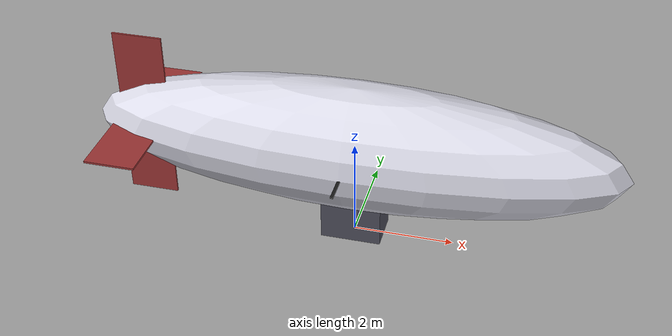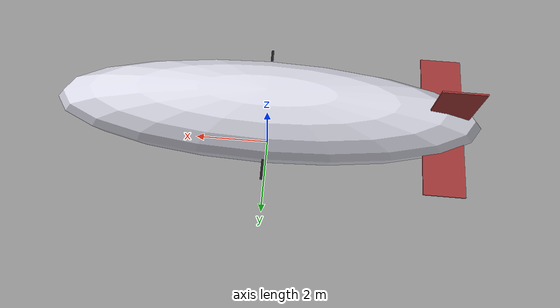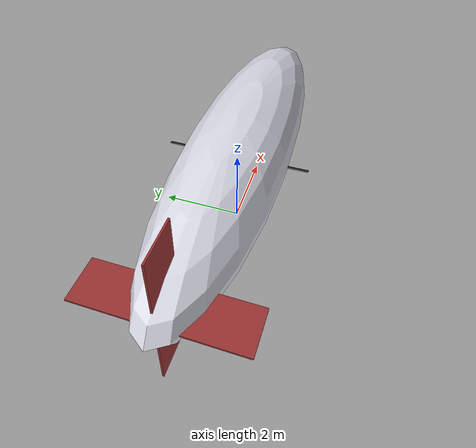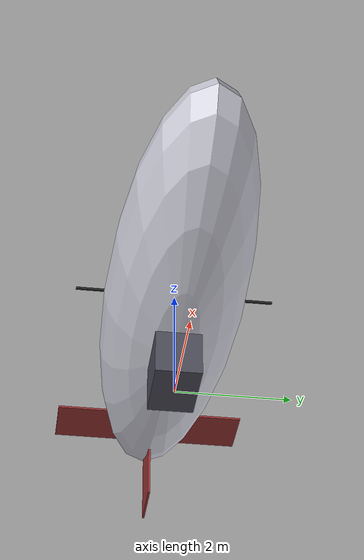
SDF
<?xml version="1.0" encoding="UTF-8"?>
<sdf version="1.10">
  <model name="airship_side">
    <include merge="true">
      <uri>model://airship_base</uri>
    </include>
    <link name="prop_starboard">
      <pose>0 -1.5 2.05 0 1.5708 0</pose>
      <inertial>
        <mass>0.05</mass>
        <inertia>
          <ixx>0.0001</ixx>
          <iyy>0.0001</iyy>
          <izz>0.0001</izz>
        </inertia>
      </inertial>
      <visual name="prop_starboard_visual">
        <geometry>
          <box>
            <size>0.02 0.5 0.06</size>
          </box>
        </geometry>
        <material>
          <ambient>0.1 0.1 0.1 1</ambient>
          <diffuse>0.1 0.1 0.1 1</diffuse>
        </material>
      </visual>
    </link>
    <joint name="prop_starboard_joint" type="revolute">
      <parent>base_link</parent>
      <child>prop_starboard</child>
      <axis>
        <xyz>0 0 1</xyz>
        <limit>
          <lower>-1e+16</lower>
          <upper>1e+16</upper>
        </limit>
        <dynamics>
          <spring_reference>0</spring_reference>
          <spring_stiffness>0</spring_stiffness>
        </dynamics>
      </axis>
    </joint>
    <link name="prop_port">
      <pose>0 1.5 2.05 0 1.5708 0</pose>
      <inertial>
        <mass>0.05</mass>
        <inertia>
          <ixx>0.0001</ixx>
          <iyy>0.0001</iyy>
          <izz>0.0001</izz>
        </inertia>
      </inertial>
      <visual name="prop_port_visual">
        <geometry>
          <box>
            <size>0.02 0.5 0.06</size>
          </box>
        </geometry>
        <material>
          <ambient>0.1 0.1 0.1 1</ambient>
          <diffuse>0.1 0.1 0.1 1</diffuse>
        </material>
      </visual>
    </link>
    <joint name="prop_port_joint" type="revolute">
      <parent>base_link</parent>
      <child>prop_port</child>
      <axis>
        <xyz>0 0 1</xyz>
        <limit>
          <lower>-1e+16</lower>
          <upper>1e+16</upper>
        </limit>
        <dynamics>
          <spring_reference>0</spring_reference>
          <spring_stiffness>0</spring_stiffness>
        </dynamics>
      </axis>
    </joint>
    <plugin filename="gz-sim-multicopter-motor-model-system"
      name="gz::sim::systems::MulticopterMotorModel">
      <jointName>prop_starboard_joint</jointName>
      <linkName>prop_starboard</linkName>
      <turningDirection>ccw</turningDirection>
      <timeConstantUp>0.0125</timeConstantUp>
      <timeConstantDown>0.025</timeConstantDown>
      <maxRotVelocity>300.0</maxRotVelocity>
      <motorConstant>0.0002</motorConstant>
      <momentConstant>0.016</momentConstant>
      <commandSubTopic>command/motor_speed</commandSubTopic>
      <motorNumber>0</motorNumber>
      <rotorDragCoefficient>8.06428e-05</rotorDragCoefficient>
      <rollingMomentCoefficient>1e-06</rollingMomentCoefficient>
      <rotorVelocitySlowdownSim>10</rotorVelocitySlowdownSim>
      <motorType>velocity</motorType>
    </plugin>
    <plugin filename="gz-sim-multicopter-motor-model-system"
      name="gz::sim::systems::MulticopterMotorModel">
      <jointName>prop_port_joint</jointName>
      <linkName>prop_port</linkName>
      <turningDirection>cw</turningDirection>
      <timeConstantUp>0.0125</timeConstantUp>
      <timeConstantDown>0.025</timeConstantDown>
      <maxRotVelocity>300.0</maxRotVelocity>
      <motorConstant>0.0002</motorConstant>
      <momentConstant>0.016</momentConstant>
      <commandSubTopic>command/motor_speed</commandSubTopic>
      <motorNumber>1</motorNumber>
      <rotorDragCoefficient>8.06428e-05</rotorDragCoefficient>
      <rollingMomentCoefficient>1e-06</rollingMomentCoefficient>
      <rotorVelocitySlowdownSim>10</rotorVelocitySlowdownSim>
      <motorType>velocity</motorType>
    </plugin>
  </model>
</sdf>

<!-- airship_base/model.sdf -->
<sdf version="1.10">
  <model name="airship_base">
    <self_collide>false</self_collide>
    <static>false</static>
    <link name="base_link">
      <pose>0 0 0 0 0 0</pose>
      <inertial>
        <!-- Combined CoM of hull + gondola (props carry their own 2x0.05 kg
             in their own links; total stays 43.033 kg = neutral).
             Low CoM + high CoV = pendulum stability. -->
        <pose>0 0 0.901 0 0 0</pose>
        <mass>42.933</mass>
        <inertia>
          <ixx>36.1</ixx>
          <iyy>105.9</iyy>
          <izz>81.1</izz>
          <ixy>0</ixy>
          <ixz>0</ixz>
          <iyz>0</iyz>
        </inertia>
      </inertial>
      <!-- HULL collision: the buoyancy volume (34.36 m^3) and the shape that
           matters if the ship ever rolls fully over. -->
      <collision name="hull_collision">
        <pose>0 0 2.05 0 0 0</pose>
        <geometry>
          <ellipsoid>
            <radii>5.25 1.25 1.25</radii>
          </ellipsoid>
        </geometry>
      </collision>
      <!-- GONDOLA collision: the ground-contact shape (and 0.77 m^3 of
           buoyancy volume, included in the mass budget). -->
      <collision name="gondola_collision">
        <pose>0 0 0.4 0 0 0</pose>
        <geometry>
          <box>
            <size>1.2 0.8 0.8</size>
          </box>
        </geometry>
        <surface>
          <contact>
            <ode>
              <min_depth>0.001</min_depth>
              <max_vel>0</max_vel>
            </ode>
          </contact>
          <friction>
            <ode />
          </friction>
        </surface>
      </collision>
      <visual name="hull_visual">
        <pose>0 0 2.05 0 0 0</pose>
        <geometry>
          <ellipsoid>
            <radii>5.25 1.25 1.25</radii>
          </ellipsoid>
        </geometry>
        <material>
          <ambient>0.85 0.85 0.9 1</ambient>
          <diffuse>0.85 0.85 0.9 1</diffuse>
          <specular>0.3 0.3 0.3 1</specular>
        </material>
      </visual>
      <visual name="gondola_visual">
        <pose>0 0 0.4 0 0 0</pose>
        <geometry>
          <box>
            <size>1.2 0.8 0.8</size>
          </box>
        </geometry>
        <material>
          <ambient>0.3 0.3 0.35 1</ambient>
          <diffuse>0.3 0.3 0.35 1</diffuse>
          <specular>0.2 0.2 0.2 1</specular>
        </material>
      </visual>
      <visual name="fin_horizontal_visual">
        <pose>-4.3 0 2.05 0 0 0</pose>
        <geometry>
          <box>
            <size>1.0 3.6 0.04</size>
          </box>
        </geometry>
        <material>
          <ambient>0.6 0.2 0.2 1</ambient>
          <diffuse>0.6 0.2 0.2 1</diffuse>
        </material>
      </visual>
      <visual name="fin_vertical_visual">
        <pose>-4.3 0 2.05 0 0 0</pose>
        <geometry>
          <box>
            <size>1.0 0.04 3.6</size>
          </box>
        </geometry>
        <material>
          <ambient>0.6 0.2 0.2 1</ambient>
          <diffuse>0.6 0.2 0.2 1</diffuse>
        </material>
      </visual>
      <sensor name="air_pressure_sensor" type="air_pressure">
        <gz_frame_id>base_link</gz_frame_id>
        <always_on>1</always_on>
        <update_rate>50</update_rate>
        <air_pressure>
          <!-- Noise modeled after BMP390 -->
          <pressure>
            <noise type="gaussian">
              <mean>0</mean>
              <stddev>3</stddev>
            </noise>
          </pressure>
        </air_pressure>
      </sensor>
      <sensor name="magnetometer_sensor" type="magnetometer">
        <gz_frame_id>base_link</gz_frame_id>
        <always_on>1</always_on>
        <update_rate>100</update_rate>
        <magnetometer>
          <x>
            <noise type="gaussian">
              <stddev>0.0001</stddev>
            </noise>
          </x>
          <y>
            <noise type="gaussian">
              <stddev>0.0001</stddev>
            </noise>
          </y>
          <z>
            <noise type="gaussian">
              <stddev>0.0001</stddev>
            </noise>
          </z>
        </magnetometer>
      </sensor>
      <sensor name="imu_sensor" type="imu">
        <gz_frame_id>base_link</gz_frame_id>
        <always_on>1</always_on>
        <update_rate>250</update_rate>
        <imu>
          <angular_velocity>
            <!-- Noise modeled after IIM42653, 0.05 deg/s in rad/s -->
            <x>
              <noise type="gaussian">
                <mean>0.0</mean>
                <stddev>0.0008726646</stddev>
              </noise>
            </x>
            <y>
              <noise type="gaussian">
                <mean>0.0</mean>
                <stddev>0.0008726646</stddev>
              </noise>
            </y>
            <z>
              <noise type="gaussian">
                <mean>0.0</mean>
                <stddev>0.0008726646</stddev>
              </noise>
            </z>
          </angular_velocity>
          <linear_acceleration>
            <!-- Noise modeled after IIM42653, 0.65/0.70 mg-rms in m/s^2 -->
            <x>
              <noise type="gaussian">
                <mean>0.0</mean>
                <stddev>0.00637</stddev>
              </noise>
            </x>
            <y>
              <noise type="gaussian">
                <mean>0.0</mean>
                <stddev>0.00637</stddev>
              </noise>
            </y>
            <z>
              <noise type="gaussian">
                <mean>0.0</mean>
                <stddev>0.00686</stddev>
              </noise>
            </z>
          </linear_acceleration>
        </imu>
      </sensor>
      <sensor name="navsat_sensor" type="navsat">
        <gz_frame_id>base_link</gz_frame_id>
        <always_on>1</always_on>
        <update_rate>30</update_rate>
      </sensor>
    </link>
  </model>
</sdf>
